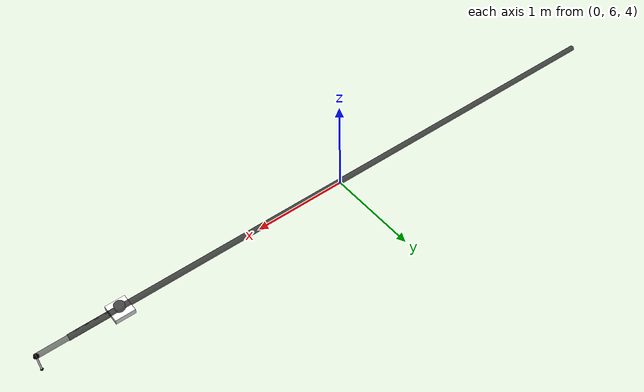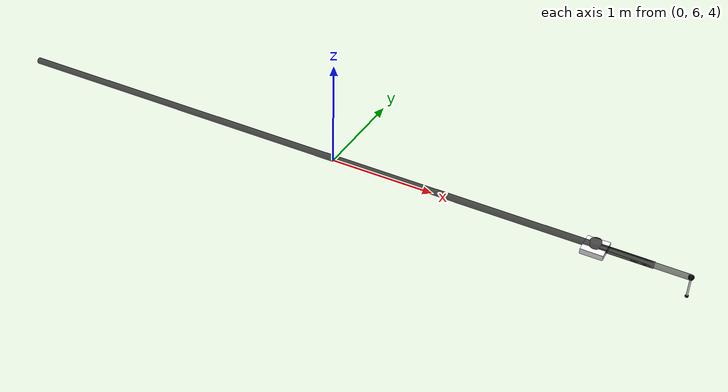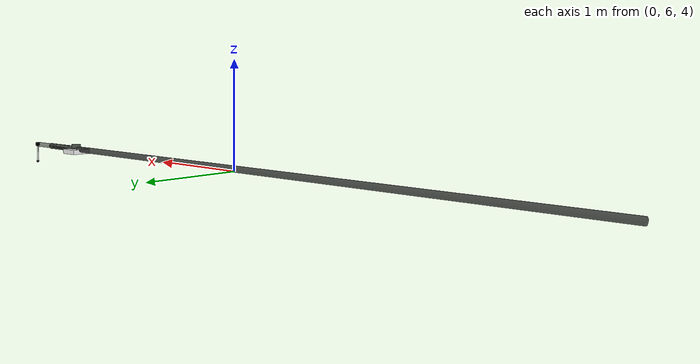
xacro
<?xml version="1.0"?>
<robot name="giraffe_robot" xmlns:xacro="http://www.ros.org/wiki/xacro">

  <!-- Constants -->
  <xacro:property name="M_PI" value="3.1415926535897931" />
  <xacro:property name="ceiling_height" value="4.0" />
  <xacro:property name="arm_segment_length" value="0.5" />
  <xacro:property name="prismatic_max_extension" value="6.5" />
  <xacro:property name="mic_arm_length" value="0.3" />

  <!-- Materials -->
  <material name="black"><color rgba="0 0 0 1"/></material>
  <material name="white"><color rgba="1 1 1 1"/></material>
  <material name="dark grey"><color rgba="0 0 0 0.7"/></material>
  <material name="light grey"><color rgba="0 0 0 0.5"/></material>

  <link name="world"/>

  <!-- Base -->
  <link name="base_link">
    <visual>
      <geometry><box size="0.2 0.2 0.05"/></geometry>
      <material name="white"/>
    </visual>
    <collision>
      <geometry><box size="0.2 0.2 0.05"/></geometry>
    </collision>
    <inertial>
      <mass value="5.0"/>
      <origin xyz="0 0 0"/>
      <inertia ixx="0.00417" ixy="0" ixz="0" iyy="0.00417" iyz="0" izz="0.00833"/>
    </inertial>
  </link>

  <joint name="world_to_base" type="fixed">
    <parent link="world"/>
    <child link="base_link"/>
    <origin xyz="2.5 6.0 ${ceiling_height}" rpy="0 0 0"/>
  </joint>

  <!-- Link1 -->
  <link name="link1">
    <visual>
      <geometry><cylinder length="0.1" radius="0.05"/></geometry>
      <material name="dark grey"/>
    </visual>
    <collision>
      <geometry><cylinder length="0.1" radius="0.05"/></geometry>
    </collision>
    <inertial>
      <mass value="1.0"/>
      <origin xyz="0 0 0"/>
      <inertia ixx="0.00046" ixy="0" ixz="0" iyy="0.00046" iyz="0" izz="0.00125"/>
    </inertial>
  </link>

  <joint name="joint1" type="revolute">
    <parent link="base_link"/>
    <child link="link1"/>
    <origin xyz="0 0 0.025" rpy="0 0 0"/>  <!-- Offset from base -->
    <axis xyz="0 0 1"/>
    <limit lower="-${M_PI}" upper="${M_PI}" effort="100" velocity="1"/>
    <dynamics damping="0.5"/>
  </joint>

  <!-- Link2 -->
  <link name="link2">
    <visual>
      <geometry><cylinder length="${arm_segment_length}" radius="0.03"/></geometry>
      <origin xyz="${arm_segment_length/2} 0 0" rpy="0 ${M_PI/2} 0"/>
      <material name="dark grey"/>
    </visual>
    <collision>
      <origin xyz="${arm_segment_length/2} 0 0" rpy="0 ${M_PI/2} 0"/>
      <geometry><cylinder length="${arm_segment_length}" radius="0.03"/></geometry>
    </collision>
    <inertial>
      <mass value="2.0"/>
      <origin xyz="${arm_segment_length/2} 0 0"/>  <!-- COM at center -->
      <inertia ixx="0.0009" ixy="0" ixz="0" iyy="0.0417" iyz="0" izz="0.0417"/>
    </inertial>
  </link>

  <joint name="joint2" type="revolute">
    <parent link="link1"/>
    <child link="link2"/>
    <origin xyz="0 0 0" rpy="0 0 0"/>
    <axis xyz="0 1 0"/>
    <limit lower="-${2*M_PI/3}" upper="0" effort="100" velocity="1"/>
    <dynamics damping="0.5"/>
  </joint>

  <!-- Link3 -->
<link name="link3">
    <visual>
      <geometry><cylinder length="${prismatic_max_extension}" radius="0.03"/></geometry>
      <origin xyz="-${prismatic_max_extension / 2.0} 0 0" rpy="0 ${M_PI/2} 0"/>
      <material name="dark grey"/>
    </visual>
    <collision>
      <geometry><cylinder length="${prismatic_max_extension}" radius="0.03"/></geometry>
      <origin xyz="-${prismatic_max_extension / 2.0} 0 0" rpy="0 ${M_PI/2} 0"/>
    </collision>
    <inertial>
      <mass value="1.5"/>
      <origin xyz="-${prismatic_max_extension / 2.0} 0 0" rpy="0 0 0"/>
      <inertia ixx="0.0004" ixy="0" ixz="0" iyy="1.1252" iyz="0" izz="1.1252"/>
    </inertial>
  </link>

  <joint name="joint3" type="prismatic">
    <parent link="link2"/>
    <child link="link3"/>
    <origin xyz="${arm_segment_length} 0 0" rpy="0 0 0"/>
    <axis xyz="1 0 0"/>
    <limit lower="0" upper="${prismatic_max_extension}" effort="10000" velocity="0.5"/>
    <dynamics damping="10.0" friction="2.0"/>
  </joint>

  <!-- Link4: Microphone bar -->
  <link name="link4">
    <visual>
      <geometry><cylinder length="${mic_arm_length}" radius="0.025"/></geometry>
      <origin xyz="${mic_arm_length/2} 0 0" rpy="0 ${M_PI/2} 0"/>
      <material name="light grey"/>
    </visual>
    <collision>
      <origin xyz="${mic_arm_length/2} 0 0" rpy="0 ${M_PI/2} 0"/>
      <geometry><cylinder length="${mic_arm_length}" radius="0.01"/></geometry>
    </collision>
    <inertial>
      <mass value="0.5"/>
      <origin xyz="${mic_arm_length/2} 0 0"/>
      <inertia ixx="0.000025" ixy="0" ixz="0" iyy="0.00377" iyz="0" izz="0.00377"/>
    </inertial>
  </link>

<joint name="joint4" type="revolute">
    <parent link="link3"/>
    <child link="link4"/>
    <origin xyz="0 0 0" rpy="0 0 0"/>
    <axis xyz="0 1 0"/>
    <limit lower="-${M_PI/2}" upper="${M_PI/2}" effort="50" velocity="1"/>
    <dynamics damping="0.3"/>
  </joint>

  <!-- End-effector: microphone -->
  <link name="ee_link">
    <visual>
      <geometry><sphere radius="0.025"/></geometry>
      <material name="black"/>
    </visual>
    <visual>
      <geometry><cylinder length="0.2" radius="0.008"/></geometry>
      <origin xyz="0 0 -0.1" rpy="0 0 0"/>
      <material name="white"/>
    </visual>
    <visual>
      <geometry><sphere radius="0.015"/></geometry>
      <origin xyz="0 0 -0.2" rpy="0 0 0"/>
      <material name="black"/>
    </visual>
    <collision>
      <geometry><sphere radius="0.03"/></geometry>
    </collision>
    <inertial>
      <mass value="0.3"/>
      <origin xyz="0 0 -0.1"/>
      <inertia ixx="0.003" ixy="0" ixz="0" iyy="0.003" iyz="0" izz="0.003"/>
    </inertial>
  </link>

  <joint name="joint5" type="revolute">
    <parent link="link4"/>
    <child link="ee_link"/>
    <origin xyz="${mic_arm_length} 0 0" rpy="0 0 0"/>
    <axis xyz="0 1 0"/>
    <limit lower="-${M_PI/2}" upper="${M_PI/2}" effort="50" velocity="1"/>
    <dynamics damping="0.2"/>
  </joint>

</robot>
